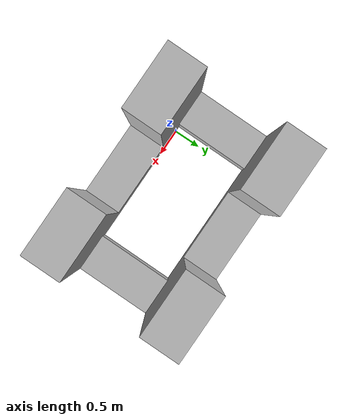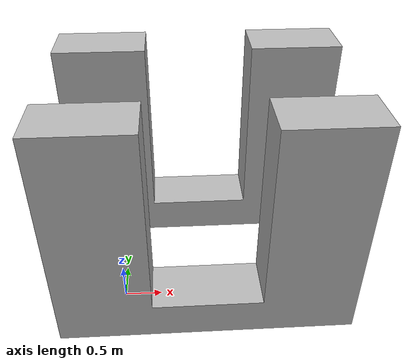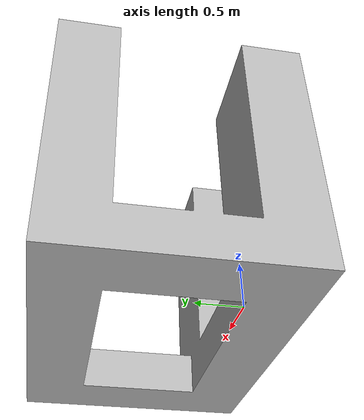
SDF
<?xml version="1.0" ?>
<sdf version="1.5">
  <model name='obs11'>
    <static>false</static>
    <link name="link">
      <collision name='collision'>
        <geometry>
          <mesh>
            <uri>model://obs11/mesh/Obs11.stl</uri>
            <scale>0.01 0.01 0.01</scale>
          </mesh>
        </geometry>
      </collision>

      <visual name='visual'>
        <geometry>
          <mesh>
            <uri>model://obs11/mesh/Obs11.stl</uri>
            <scale>0.01 0.01 0.01</scale>
          </mesh>
        </geometry>
        <material>
          <script>
            <uri>model://obs11/materials/scripts</uri>
            <uri>model://obs11/materials/textures</uri>
            <name>buildMat/Tex11</name>
          </script>
        </material>
      </visual>
    </link>
  </model>
</sdf>
